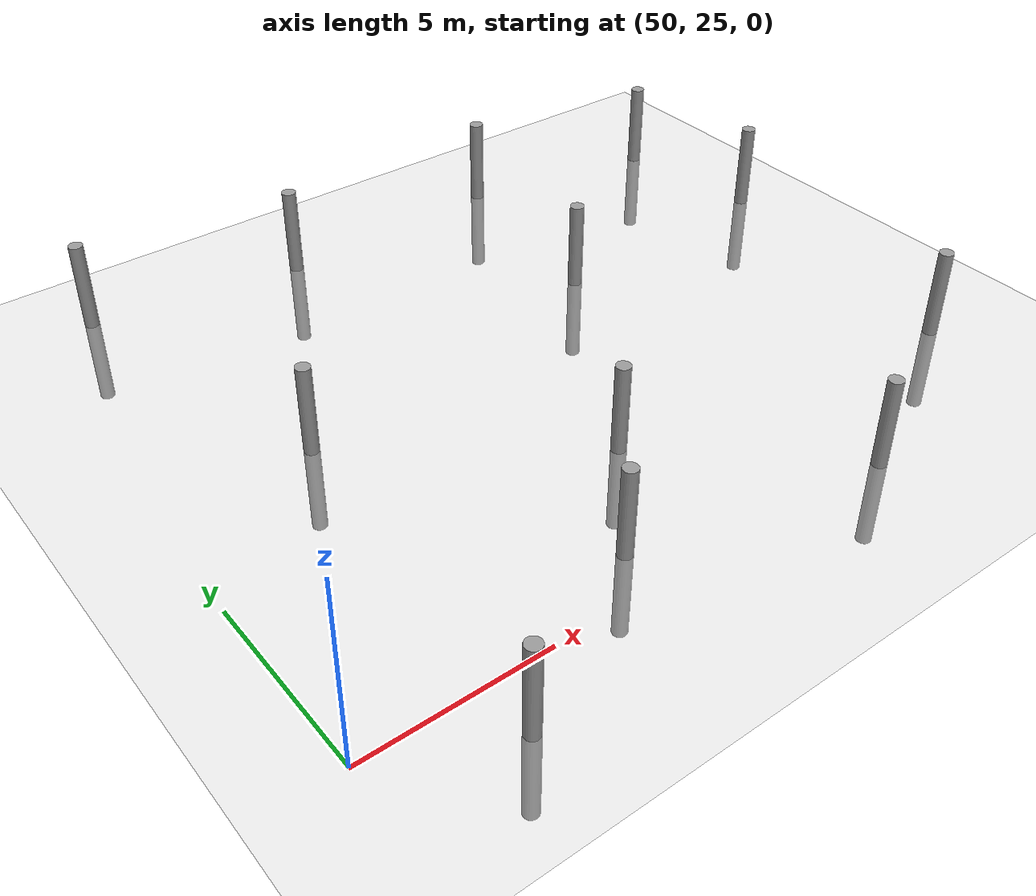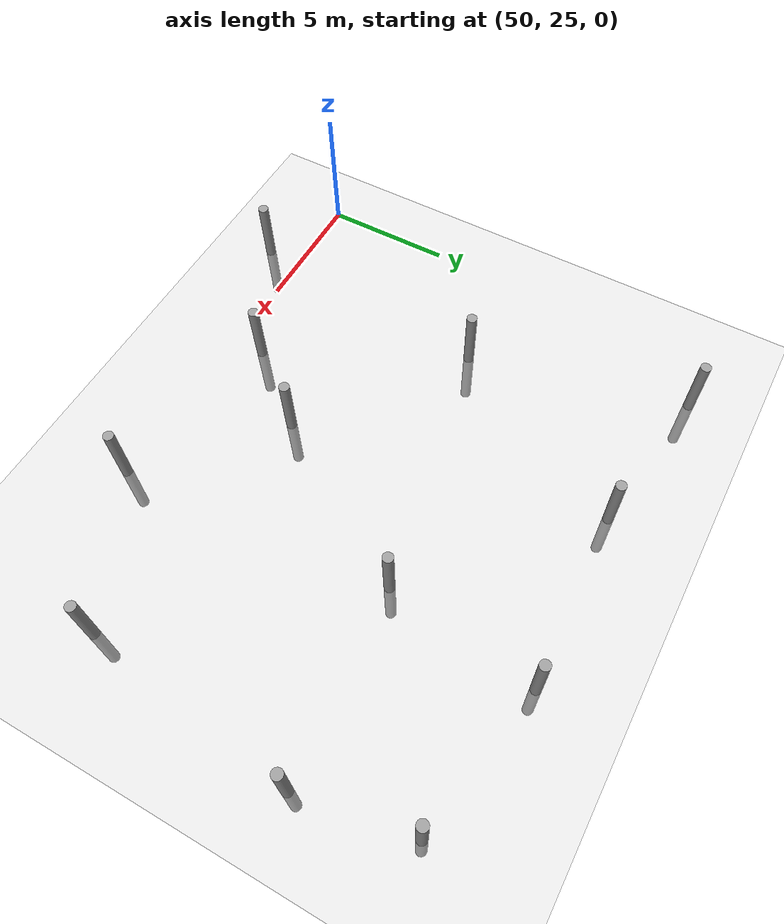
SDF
<sdf version="1.6">
 <world name="default">
  <model name="ground_plane">
   <static>1</static>
   <link name="link">
    <collision name="collision">
     <geometry><plane><normal>0 0 1</normal><size>100 100</size></plane></geometry>
     <surface><friction><ode><mu>100</mu><mu2>50</mu2></ode></friction></surface>
    </collision>
    <visual name="visual">
     <cast_shadows>0</cast_shadows>
     <geometry><plane><normal>0 0 1</normal><size>100 100</size></plane></geometry>
     <material>
      <script><uri>file://media/materials/scripts/gazebo.material</uri><name>Gazebo/Grey</name></script>
     </material>
    </visual>
   </link>
  </model>
  <model name="empty_pillars_3">
   <model name="empty_pillar">
    <link name="link">
     <inertial>
      <mass>1</mass>
      <inertia><ixx>0.145833</ixx><ixy>0</ixy><ixz>0</ixz><iyy>0.145833</iyy><iyz>0</iyz><izz>0.125</izz></inertia>
     </inertial>
     <visual name="visual">
      <geometry><cylinder><radius>0.2</radius><length>5</length></cylinder></geometry>
      <material>
       <script><name>Gazebo/Grey</name><uri>file://media/materials/scripts/gazebo.material</uri></script>
       <shader type="vertex"><normal_map>__default__</normal_map></shader>
       <ambient>0.3 0.3 0.3 1</ambient>
       <diffuse>0.7 0.7 0.7 1</diffuse>
       <specular>0.01 0.01 0.01 1</specular>
       <emissive>0 0 0 1</emissive>
      </material>
     </visual>
     <collision name="collision">
      <geometry><cylinder><radius>0.05</radius><length>5</length></cylinder></geometry>
      <surface>
       <friction>
        <ode><mu>1</mu><mu2>1</mu2><fdir1>0 0 0</fdir1><slip1>0</slip1><slip2>0</slip2></ode>
        <torsional>
         <coefficient>1</coefficient>
         <patch_radius>0</patch_radius>
         <surface_radius>0</surface_radius>
         <use_patch_radius>1</use_patch_radius>
         <ode><slip>0</slip></ode>
        </torsional>
       </friction>
       <bounce><restitution_coefficient>0</restitution_coefficient><threshold>1e+06</threshold></bounce>
       <contact>
        <collide_without_contact>0</collide_without_contact>
        <collide_without_contact_bitmask>1</collide_without_contact_bitmask>
        <collide_bitmask>1</collide_bitmask>
        <ode>
         <soft_cfm>0</soft_cfm>
         <soft_erp>0.2</soft_erp>
         <kp>1e+13</kp>
         <kd>1</kd>
         <max_vel>0.01</max_vel>
         <min_depth>0</min_depth>
        </ode>
        <bullet>
         <split_impulse>1</split_impulse>
         <split_impulse_penetration_threshold>-0.01</split_impulse_penetration_threshold>
         <soft_cfm>0</soft_cfm>
         <soft_erp>0.2</soft_erp>
         <kp>1e+13</kp>
         <kd>1</kd>
        </bullet>
       </contact>
      </surface>
     </collision>
    </link>
    <static>0</static>
    <pose>-3.84527 -0.717439 0 0 -0 0</pose>
   </model>
   <model name="empty_pillar_clone_14">
    <link name="link">
     <inertial>
      <mass>1</mass>
      <inertia><ixx>0.145833</ixx><ixy>0</ixy><ixz>0</ixz><iyy>0.145833</iyy><iyz>0</iyz><izz>0.125</izz></inertia>
     </inertial>
     <visual name="visual">
      <geometry><cylinder><radius>0.2</radius><length>5</length></cylinder></geometry>
      <material>
       <script><name>Gazebo/Grey</name><uri>file://media/materials/scripts/gazebo.material</uri></script>
       <shader type="vertex"><normal_map>__default__</normal_map></shader>
       <ambient>0.3 0.3 0.3 1</ambient>
       <diffuse>0.7 0.7 0.7 1</diffuse>
       <specular>0.01 0.01 0.01 1</specular>
       <emissive>0 0 0 1</emissive>
      </material>
     </visual>
     <collision name="collision">
      <geometry><cylinder><radius>0.05</radius><length>5</length></cylinder></geometry>
      <surface>
       <friction>
        <ode><mu>1</mu><mu2>1</mu2><fdir1>0 0 0</fdir1><slip1>0</slip1><slip2>0</slip2></ode>
        <torsional>
         <coefficient>1</coefficient>
         <patch_radius>0</patch_radius>
         <surface_radius>0</surface_radius>
         <use_patch_radius>1</use_patch_radius>
         <ode><slip>0</slip></ode>
        </torsional>
       </friction>
       <bounce><restitution_coefficient>0</restitution_coefficient><threshold>1e+06</threshold></bounce>
       <contact>
        <collide_without_contact>0</collide_without_contact>
        <collide_without_contact_bitmask>1</collide_without_contact_bitmask>
        <collide_bitmask>1</collide_bitmask>
        <ode>
         <soft_cfm>0</soft_cfm>
         <soft_erp>0.2</soft_erp>
         <kp>1e+13</kp>
         <kd>1</kd>
         <max_vel>0.01</max_vel>
         <min_depth>0</min_depth>
        </ode>
        <bullet>
         <split_impulse>1</split_impulse>
         <split_impulse_penetration_threshold>-0.01</split_impulse_penetration_threshold>
         <soft_cfm>0</soft_cfm>
         <soft_erp>0.2</soft_erp>
         <kp>1e+13</kp>
         <kd>1</kd>
        </bullet>
       </contact>
      </surface>
     </collision>
    </link>
    <static>0</static>
    <pose>-14.0146 0.646152 0 0 -0 0</pose>
   </model>
   <model name="empty_pillar_clone_15">
    <link name="link">
     <inertial>
      <mass>1</mass>
      <inertia><ixx>0.145833</ixx><ixy>0</ixy><ixz>0</ixz><iyy>0.145833</iyy><iyz>0</iyz><izz>0.125</izz></inertia>
     </inertial>
     <visual name="visual">
      <geometry><cylinder><radius>0.2</radius><length>5</length></cylinder></geometry>
      <material>
       <script><name>Gazebo/Grey</name><uri>file://media/materials/scripts/gazebo.material</uri></script>
       <shader type="vertex"><normal_map>__default__</normal_map></shader>
       <ambient>0.3 0.3 0.3 1</ambient>
       <diffuse>0.7 0.7 0.7 1</diffuse>
       <specular>0.01 0.01 0.01 1</specular>
       <emissive>0 0 0 1</emissive>
      </material>
     </visual>
     <collision name="collision">
      <geometry><cylinder><radius>0.05</radius><length>5</length></cylinder></geometry>
      <surface>
       <friction>
        <ode><mu>1</mu><mu2>1</mu2><fdir1>0 0 0</fdir1><slip1>0</slip1><slip2>0</slip2></ode>
        <torsional>
         <coefficient>1</coefficient>
         <patch_radius>0</patch_radius>
         <surface_radius>0</surface_radius>
         <use_patch_radius>1</use_patch_radius>
         <ode><slip>0</slip></ode>
        </torsional>
       </friction>
       <bounce><restitution_coefficient>0</restitution_coefficient><threshold>1e+06</threshold></bounce>
       <contact>
        <collide_without_contact>0</collide_without_contact>
        <collide_without_contact_bitmask>1</collide_without_contact_bitmask>
        <collide_bitmask>1</collide_bitmask>
        <ode>
         <soft_cfm>0</soft_cfm>
         <soft_erp>0.2</soft_erp>
         <kp>1e+13</kp>
         <kd>1</kd>
         <max_vel>0.01</max_vel>
         <min_depth>0</min_depth>
        </ode>
        <bullet>
         <split_impulse>1</split_impulse>
         <split_impulse_penetration_threshold>-0.01</split_impulse_penetration_threshold>
         <soft_cfm>0</soft_cfm>
         <soft_erp>0.2</soft_erp>
         <kp>1e+13</kp>
         <kd>1</kd>
        </bullet>
       </contact>
      </surface>
     </collision>
    </link>
    <static>0</static>
    <pose>-9.37193 -3.58732 0 0 -0 0</pose>
   </model>
   <model name="empty_pillar_clone_16">
    <link name="link">
     <inertial>
      <mass>1</mass>
      <inertia><ixx>0.145833</ixx><ixy>0</ixy><ixz>0</ixz><iyy>0.145833</iyy><iyz>0</iyz><izz>0.125</izz></inertia>
     </inertial>
     <visual name="visual">
      <geometry><cylinder><radius>0.2</radius><length>5</length></cylinder></geometry>
      <material>
       <script><name>Gazebo/Grey</name><uri>file://media/materials/scripts/gazebo.material</uri></script>
       <shader type="vertex"><normal_map>__default__</normal_map></shader>
       <ambient>0.3 0.3 0.3 1</ambient>
       <diffuse>0.7 0.7 0.7 1</diffuse>
       <specular>0.01 0.01 0.01 1</specular>
       <emissive>0 0 0 1</emissive>
      </material>
     </visual>
     <collision name="collision">
      <geometry><cylinder><radius>0.05</radius><length>5</length></cylinder></geometry>
      <surface>
       <friction>
        <ode><mu>1</mu><mu2>1</mu2><fdir1>0 0 0</fdir1><slip1>0</slip1><slip2>0</slip2></ode>
        <torsional>
         <coefficient>1</coefficient>
         <patch_radius>0</patch_radius>
         <surface_radius>0</surface_radius>
         <use_patch_radius>1</use_patch_radius>
         <ode><slip>0</slip></ode>
        </torsional>
       </friction>
       <bounce><restitution_coefficient>0</restitution_coefficient><threshold>1e+06</threshold></bounce>
       <contact>
        <collide_without_contact>0</collide_without_contact>
        <collide_without_contact_bitmask>1</collide_without_contact_bitmask>
        <collide_bitmask>1</collide_bitmask>
        <ode>
         <soft_cfm>0</soft_cfm>
         <soft_erp>0.2</soft_erp>
         <kp>1e+13</kp>
         <kd>1</kd>
         <max_vel>0.01</max_vel>
         <min_depth>0</min_depth>
        </ode>
        <bullet>
         <split_impulse>1</split_impulse>
         <split_impulse_penetration_threshold>-0.01</split_impulse_penetration_threshold>
         <soft_cfm>0</soft_cfm>
         <soft_erp>0.2</soft_erp>
         <kp>1e+13</kp>
         <kd>1</kd>
        </bullet>
       </contact>
      </surface>
     </collision>
    </link>
    <static>0</static>
    <pose>-9.20789 13.0504 0 0 -0 0</pose>
   </model>
   <model name="empty_pillar_clone_17">
    <link name="link">
     <inertial>
      <mass>1</mass>
      <inertia><ixx>0.145833</ixx><ixy>0</ixy><ixz>0</ixz><iyy>0.145833</iyy><iyz>0</iyz><izz>0.125</izz></inertia>
     </inertial>
     <visual name="visual">
      <geometry><cylinder><radius>0.2</radius><length>5</length></cylinder></geometry>
      <material>
       <script><name>Gazebo/Grey</name><uri>file://media/materials/scripts/gazebo.material</uri></script>
       <shader type="vertex"><normal_map>__default__</normal_map></shader>
       <ambient>0.3 0.3 0.3 1</ambient>
       <diffuse>0.7 0.7 0.7 1</diffuse>
       <specular>0.01 0.01 0.01 1</specular>
       <emissive>0 0 0 1</emissive>
      </material>
     </visual>
     <collision name="collision">
      <geometry><cylinder><radius>0.05</radius><length>5</length></cylinder></geometry>
      <surface>
       <friction>
        <ode><mu>1</mu><mu2>1</mu2><fdir1>0 0 0</fdir1><slip1>0</slip1><slip2>0</slip2></ode>
        <torsional>
         <coefficient>1</coefficient>
         <patch_radius>0</patch_radius>
         <surface_radius>0</surface_radius>
         <use_patch_radius>1</use_patch_radius>
         <ode><slip>0</slip></ode>
        </torsional>
       </friction>
       <bounce><restitution_coefficient>0</restitution_coefficient><threshold>1e+06</threshold></bounce>
       <contact>
        <collide_without_contact>0</collide_without_contact>
        <collide_without_contact_bitmask>1</collide_without_contact_bitmask>
        <collide_bitmask>1</collide_bitmask>
        <ode>
         <soft_cfm>0</soft_cfm>
         <soft_erp>0.2</soft_erp>
         <kp>1e+13</kp>
         <kd>1</kd>
         <max_vel>0.01</max_vel>
         <min_depth>0</min_depth>
        </ode>
        <bullet>
         <split_impulse>1</split_impulse>
         <split_impulse_penetration_threshold>-0.01</split_impulse_penetration_threshold>
         <soft_cfm>0</soft_cfm>
         <soft_erp>0.2</soft_erp>
         <kp>1e+13</kp>
         <kd>1</kd>
        </bullet>
       </contact>
      </surface>
     </collision>
    </link>
    <static>0</static>
    <pose>-16.0449 12.755 0 0 -0 0</pose>
   </model>
   <model name="empty_pillar_clone_18">
    <link name="link">
     <inertial>
      <mass>1</mass>
      <inertia><ixx>0.145833</ixx><ixy>0</ixy><ixz>0</ixz><iyy>0.145833</iyy><iyz>0</iyz><izz>0.125</izz></inertia>
     </inertial>
     <visual name="visual">
      <geometry><cylinder><radius>0.2</radius><length>5</length></cylinder></geometry>
      <material>
       <script><name>Gazebo/Grey</name><uri>file://media/materials/scripts/gazebo.material</uri></script>
       <shader type="vertex"><normal_map>__default__</normal_map></shader>
       <ambient>0.3 0.3 0.3 1</ambient>
       <diffuse>0.7 0.7 0.7 1</diffuse>
       <specular>0.01 0.01 0.01 1</specular>
       <emissive>0 0 0 1</emissive>
      </material>
     </visual>
     <collision name="collision">
      <geometry><cylinder><radius>0.05</radius><length>5</length></cylinder></geometry>
      <surface>
       <friction>
        <ode><mu>1</mu><mu2>1</mu2><fdir1>0 0 0</fdir1><slip1>0</slip1><slip2>0</slip2></ode>
        <torsional>
         <coefficient>1</coefficient>
         <patch_radius>0</patch_radius>
         <surface_radius>0</surface_radius>
         <use_patch_radius>1</use_patch_radius>
         <ode><slip>0</slip></ode>
        </torsional>
       </friction>
       <bounce><restitution_coefficient>0</restitution_coefficient><threshold>1e+06</threshold></bounce>
       <contact>
        <collide_without_contact>0</collide_without_contact>
        <collide_without_contact_bitmask>1</collide_without_contact_bitmask>
        <collide_bitmask>1</collide_bitmask>
        <ode>
         <soft_cfm>0</soft_cfm>
         <soft_erp>0.2</soft_erp>
         <kp>1e+13</kp>
         <kd>1</kd>
         <max_vel>0.01</max_vel>
         <min_depth>0</min_depth>
        </ode>
        <bullet>
         <split_impulse>1</split_impulse>
         <split_impulse_penetration_threshold>-0.01</split_impulse_penetration_threshold>
         <soft_cfm>0</soft_cfm>
         <soft_erp>0.2</soft_erp>
         <kp>1e+13</kp>
         <kd>1</kd>
        </bullet>
       </contact>
      </surface>
     </collision>
    </link>
    <static>0</static>
    <pose>-20.0146 5.15966 0 0 -0 0</pose>
   </model>
   <model name="empty_pillar_clone_19">
    <link name="link">
     <inertial>
      <mass>1</mass>
      <inertia><ixx>0.145833</ixx><ixy>0</ixy><ixz>0</ixz><iyy>0.145833</iyy><iyz>0</iyz><izz>0.125</izz></inertia>
     </inertial>
     <visual name="visual">
      <geometry><cylinder><radius>0.2</radius><length>5</length></cylinder></geometry>
      <material>
       <script><name>Gazebo/Grey</name><uri>file://media/materials/scripts/gazebo.material</uri></script>
       <shader type="vertex"><normal_map>__default__</normal_map></shader>
       <ambient>0.3 0.3 0.3 1</ambient>
       <diffuse>0.7 0.7 0.7 1</diffuse>
       <specular>0.01 0.01 0.01 1</specular>
       <emissive>0 0 0 1</emissive>
      </material>
     </visual>
     <collision name="collision">
      <geometry><cylinder><radius>0.05</radius><length>5</length></cylinder></geometry>
      <surface>
       <friction>
        <ode><mu>1</mu><mu2>1</mu2><fdir1>0 0 0</fdir1><slip1>0</slip1><slip2>0</slip2></ode>
        <torsional>
         <coefficient>1</coefficient>
         <patch_radius>0</patch_radius>
         <surface_radius>0</surface_radius>
         <use_patch_radius>1</use_patch_radius>
         <ode><slip>0</slip></ode>
        </torsional>
       </friction>
       <bounce><restitution_coefficient>0</restitution_coefficient><threshold>1e+06</threshold></bounce>
       <contact>
        <collide_without_contact>0</collide_without_contact>
        <collide_without_contact_bitmask>1</collide_without_contact_bitmask>
        <collide_bitmask>1</collide_bitmask>
        <ode>
         <soft_cfm>0</soft_cfm>
         <soft_erp>0.2</soft_erp>
         <kp>1e+13</kp>
         <kd>1</kd>
         <max_vel>0.01</max_vel>
         <min_depth>0</min_depth>
        </ode>
        <bullet>
         <split_impulse>1</split_impulse>
         <split_impulse_penetration_threshold>-0.01</split_impulse_penetration_threshold>
         <soft_cfm>0</soft_cfm>
         <soft_erp>0.2</soft_erp>
         <kp>1e+13</kp>
         <kd>1</kd>
        </bullet>
       </contact>
      </surface>
     </collision>
    </link>
    <static>0</static>
    <pose>-10.0146 7.15966 0 0 -0 0</pose>
   </model>
   <model name="empty_pillar_clone_24">
    <link name="link">
     <inertial>
      <mass>1</mass>
      <inertia><ixx>0.145833</ixx><ixy>0</ixy><ixz>0</ixz><iyy>0.145833</iyy><iyz>0</iyz><izz>0.125</izz></inertia>
     </inertial>
     <visual name="visual">
      <geometry><cylinder><radius>0.2</radius><length>5</length></cylinder></geometry>
      <material>
       <script><name>Gazebo/Grey</name><uri>file://media/materials/scripts/gazebo.material</uri></script>
       <shader type="vertex"><normal_map>__default__</normal_map></shader>
       <ambient>0.3 0.3 0.3 1</ambient>
       <diffuse>0.7 0.7 0.7 1</diffuse>
       <specular>0.01 0.01 0.01 1</specular>
       <emissive>0 0 0 1</emissive>
      </material>
     </visual>
     <collision name="collision">
      <geometry><cylinder><radius>0.05</radius><length>5</length></cylinder></geometry>
      <surface>
       <friction>
        <ode><mu>1</mu><mu2>1</mu2><fdir1>0 0 0</fdir1><slip1>0</slip1><slip2>0</slip2></ode>
        <torsional>
         <coefficient>1</coefficient>
         <patch_radius>0</patch_radius>
         <surface_radius>0</surface_radius>
         <use_patch_radius>1</use_patch_radius>
         <ode><slip>0</slip></ode>
        </torsional>
       </friction>
       <bounce><restitution_coefficient>0</restitution_coefficient><threshold>1e+06</threshold></bounce>
       <contact>
        <collide_without_contact>0</collide_without_contact>
        <collide_without_contact_bitmask>1</collide_without_contact_bitmask>
        <collide_bitmask>1</collide_bitmask>
        <ode>
         <soft_cfm>0</soft_cfm>
         <soft_erp>0.2</soft_erp>
         <kp>1e+13</kp>
         <kd>1</kd>
         <max_vel>0.01</max_vel>
         <min_depth>0</min_depth>
        </ode>
        <bullet>
         <split_impulse>1</split_impulse>
         <split_impulse_penetration_threshold>-0.01</split_impulse_penetration_threshold>
         <soft_cfm>0</soft_cfm>
         <soft_erp>0.2</soft_erp>
         <kp>1e+13</kp>
         <kd>1</kd>
        </bullet>
       </contact>
      </surface>
     </collision>
    </link>
    <static>0</static>
    <pose>-3.46957 11.9413 0 0 -0 0</pose>
   </model>
   <model name="empty_pillar_clone_36">
    <link name="link">
     <inertial>
      <mass>1</mass>
      <inertia><ixx>0.145833</ixx><ixy>0</ixy><ixz>0</ixz><iyy>0.145833</iyy><iyz>0</iyz><izz>0.125</izz></inertia>
     </inertial>
     <visual name="visual">
      <geometry><cylinder><radius>0.2</radius><length>5</length></cylinder></geometry>
      <material>
       <script><name>Gazebo/Grey</name><uri>file://media/materials/scripts/gazebo.material</uri></script>
       <shader type="vertex"><normal_map>__default__</normal_map></shader>
       <ambient>0.3 0.3 0.3 1</ambient>
       <diffuse>0.7 0.7 0.7 1</diffuse>
       <specular>0.01 0.01 0.01 1</specular>
       <emissive>0 0 0 1</emissive>
      </material>
     </visual>
     <collision name="collision">
      <geometry><cylinder><radius>0.05</radius><length>5</length></cylinder></geometry>
      <surface>
       <friction>
        <ode><mu>1</mu><mu2>1</mu2><fdir1>0 0 0</fdir1><slip1>0</slip1><slip2>0</slip2></ode>
        <torsional>
         <coefficient>1</coefficient>
         <patch_radius>0</patch_radius>
         <surface_radius>0</surface_radius>
         <use_patch_radius>1</use_patch_radius>
         <ode><slip>0</slip></ode>
        </torsional>
       </friction>
       <bounce><restitution_coefficient>0</restitution_coefficient><threshold>1e+06</threshold></bounce>
       <contact>
        <collide_without_contact>0</collide_without_contact>
        <collide_without_contact_bitmask>1</collide_without_contact_bitmask>
        <collide_bitmask>1</collide_bitmask>
        <ode>
         <soft_cfm>0</soft_cfm>
         <soft_erp>0.2</soft_erp>
         <kp>1e+13</kp>
         <kd>1</kd>
         <max_vel>0.01</max_vel>
         <min_depth>0</min_depth>
        </ode>
        <bullet>
         <split_impulse>1</split_impulse>
         <split_impulse_penetration_threshold>-0.01</split_impulse_penetration_threshold>
         <soft_cfm>0</soft_cfm>
         <soft_erp>0.2</soft_erp>
         <kp>1e+13</kp>
         <kd>1</kd>
        </bullet>
       </contact>
      </surface>
     </collision>
    </link>
    <static>0</static>
    <pose>-21.0146 -4.84034 0 0 -0 0</pose>
   </model>
   <model name="empty_pillar_clone_38">
    <link name="link">
     <inertial>
      <mass>1</mass>
      <inertia><ixx>0.145833</ixx><ixy>0</ixy><ixz>0</ixz><iyy>0.145833</iyy><iyz>0</iyz><izz>0.125</izz></inertia>
     </inertial>
     <visual name="visual">
      <geometry><cylinder><radius>0.2</radius><length>5</length></cylinder></geometry>
      <material>
       <script><name>Gazebo/Grey</name><uri>file://media/materials/scripts/gazebo.material</uri></script>
       <shader type="vertex"><normal_map>__default__</normal_map></shader>
       <ambient>0.3 0.3 0.3 1</ambient>
       <diffuse>0.7 0.7 0.7 1</diffuse>
       <specular>0.01 0.01 0.01 1</specular>
       <emissive>0 0 0 1</emissive>
      </material>
     </visual>
     <collision name="collision">
      <geometry><cylinder><radius>0.05</radius><length>5</length></cylinder></geometry>
      <surface>
       <friction>
        <ode><mu>1</mu><mu2>1</mu2><fdir1>0 0 0</fdir1><slip1>0</slip1><slip2>0</slip2></ode>
        <torsional>
         <coefficient>1</coefficient>
         <patch_radius>0</patch_radius>
         <surface_radius>0</surface_radius>
         <use_patch_radius>1</use_patch_radius>
         <ode><slip>0</slip></ode>
        </torsional>
       </friction>
       <bounce><restitution_coefficient>0</restitution_coefficient><threshold>1e+06</threshold></bounce>
       <contact>
        <collide_without_contact>0</collide_without_contact>
        <collide_without_contact_bitmask>1</collide_without_contact_bitmask>
        <collide_bitmask>1</collide_bitmask>
        <ode>
         <soft_cfm>0</soft_cfm>
         <soft_erp>0.2</soft_erp>
         <kp>1e+13</kp>
         <kd>1</kd>
         <max_vel>0.01</max_vel>
         <min_depth>0</min_depth>
        </ode>
        <bullet>
         <split_impulse>1</split_impulse>
         <split_impulse_penetration_threshold>-0.01</split_impulse_penetration_threshold>
         <soft_cfm>0</soft_cfm>
         <soft_erp>0.2</soft_erp>
         <kp>1e+13</kp>
         <kd>1</kd>
        </bullet>
       </contact>
      </surface>
     </collision>
    </link>
    <static>0</static>
    <pose>-16.33 -2.21607 0 0 -0 0</pose>
   </model>
   <model name="empty_pillar_clone_50">
    <link name="link">
     <inertial>
      <mass>1</mass>
      <inertia><ixx>0.145833</ixx><ixy>0</ixy><ixz>0</ixz><iyy>0.145833</iyy><iyz>0</iyz><izz>0.125</izz></inertia>
     </inertial>
     <visual name="visual">
      <geometry><cylinder><radius>0.2</radius><length>5</length></cylinder></geometry>
      <material>
       <script><name>Gazebo/Grey</name><uri>file://media/materials/scripts/gazebo.material</uri></script>
       <shader type="vertex"><normal_map>__default__</normal_map></shader>
       <ambient>0.3 0.3 0.3 1</ambient>
       <diffuse>0.7 0.7 0.7 1</diffuse>
       <specular>0.01 0.01 0.01 1</specular>
       <emissive>0 0 0 1</emissive>
      </material>
     </visual>
     <collision name="collision">
      <geometry><cylinder><radius>0.05</radius><length>5</length></cylinder></geometry>
      <surface>
       <friction>
        <ode><mu>1</mu><mu2>1</mu2><fdir1>0 0 0</fdir1><slip1>0</slip1><slip2>0</slip2></ode>
        <torsional>
         <coefficient>1</coefficient>
         <patch_radius>0</patch_radius>
         <surface_radius>0</surface_radius>
         <use_patch_radius>1</use_patch_radius>
         <ode><slip>0</slip></ode>
        </torsional>
       </friction>
       <bounce><restitution_coefficient>0</restitution_coefficient><threshold>1e+06</threshold></bounce>
       <contact>
        <collide_without_contact>0</collide_without_contact>
        <collide_without_contact_bitmask>1</collide_without_contact_bitmask>
        <collide_bitmask>1</collide_bitmask>
        <ode>
         <soft_cfm>0</soft_cfm>
         <soft_erp>0.2</soft_erp>
         <kp>1e+13</kp>
         <kd>1</kd>
         <max_vel>0.01</max_vel>
         <min_depth>0</min_depth>
        </ode>
        <bullet>
         <split_impulse>1</split_impulse>
         <split_impulse_penetration_threshold>-0.01</split_impulse_penetration_threshold>
         <soft_cfm>0</soft_cfm>
         <soft_erp>0.2</soft_erp>
         <kp>1e+13</kp>
         <kd>1</kd>
        </bullet>
       </contact>
      </surface>
     </collision>
    </link>
    <static>0</static>
    <pose>-22.0498 13.6251 0 0 -0 0</pose>
   </model>
   <model name="empty_pillar_clone_56">
    <link name="link">
     <inertial>
      <mass>1</mass>
      <inertia><ixx>0.145833</ixx><ixy>0</ixy><ixz>0</ixz><iyy>0.145833</iyy><iyz>0</iyz><izz>0.125</izz></inertia>
     </inertial>
     <visual name="visual">
      <geometry><cylinder><radius>0.2</radius><length>5</length></cylinder></geometry>
      <material>
       <script><name>Gazebo/Grey</name><uri>file://media/materials/scripts/gazebo.material</uri></script>
       <shader type="vertex"><normal_map>__default__</normal_map></shader>
       <ambient>0.3 0.3 0.3 1</ambient>
       <diffuse>0.7 0.7 0.7 1</diffuse>
       <specular>0.01 0.01 0.01 1</specular>
       <emissive>0 0 0 1</emissive>
      </material>
     </visual>
     <collision name="collision">
      <geometry><cylinder><radius>0.05</radius><length>5</length></cylinder></geometry>
      <surface>
       <friction>
        <ode><mu>1</mu><mu2>1</mu2><fdir1>0 0 0</fdir1><slip1>0</slip1><slip2>0</slip2></ode>
        <torsional>
         <coefficient>1</coefficient>
         <patch_radius>0</patch_radius>
         <surface_radius>0</surface_radius>
         <use_patch_radius>1</use_patch_radius>
         <ode><slip>0</slip></ode>
        </torsional>
       </friction>
       <bounce><restitution_coefficient>0</restitution_coefficient><threshold>1e+06</threshold></bounce>
       <contact>
        <collide_without_contact>0</collide_without_contact>
        <collide_without_contact_bitmask>1</collide_without_contact_bitmask>
        <collide_bitmask>1</collide_bitmask>
        <ode>
         <soft_cfm>0</soft_cfm>
         <soft_erp>0.2</soft_erp>
         <kp>1e+13</kp>
         <kd>1</kd>
         <max_vel>0.01</max_vel>
         <min_depth>0</min_depth>
        </ode>
        <bullet>
         <split_impulse>1</split_impulse>
         <split_impulse_penetration_threshold>-0.01</split_impulse_penetration_threshold>
         <soft_cfm>0</soft_cfm>
         <soft_erp>0.2</soft_erp>
         <kp>1e+13</kp>
         <kd>1</kd>
        </bullet>
       </contact>
      </surface>
     </collision>
    </link>
    <static>0</static>
    <pose>-2.69782 7.67053 0 0 -0 0</pose>
   </model>
   <static>0</static>
   <pose>74.2615 28.3982 0 0 -0 0</pose>
  </model>
 </world>
</sdf>
